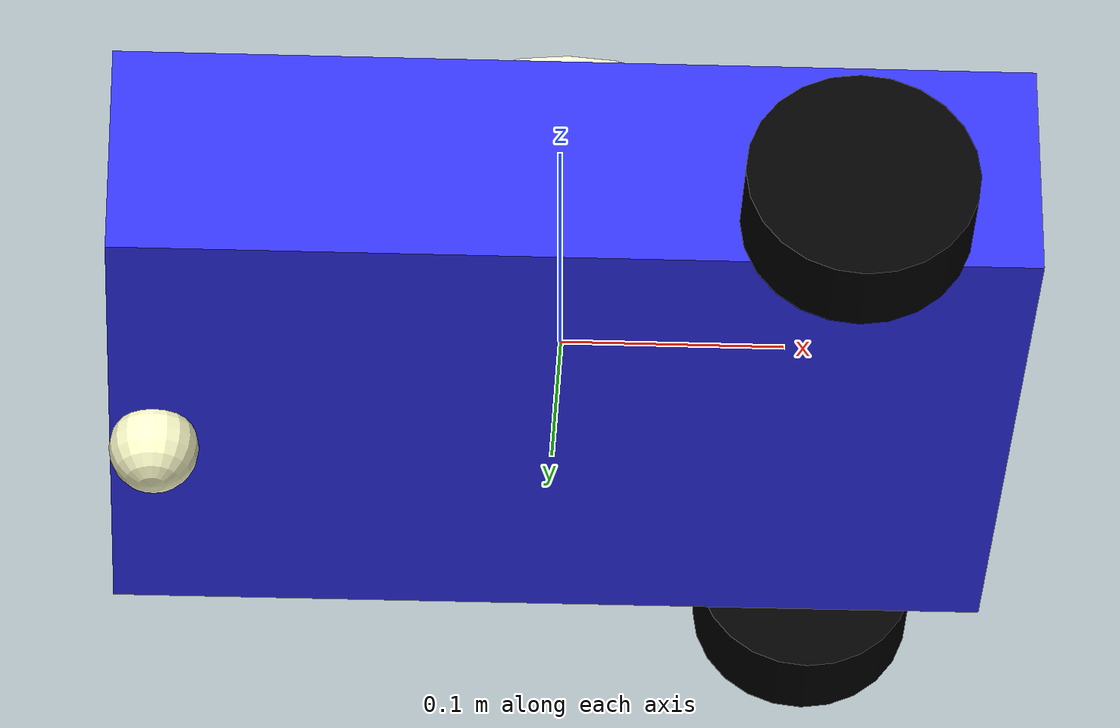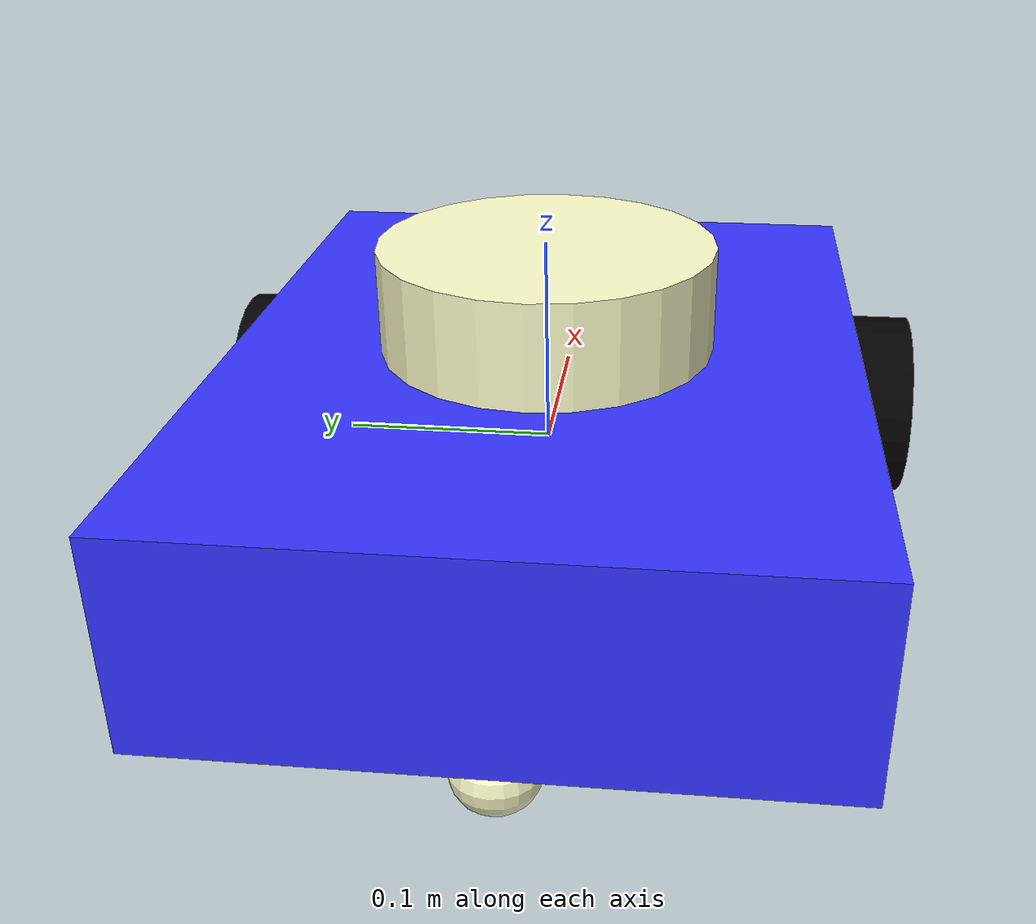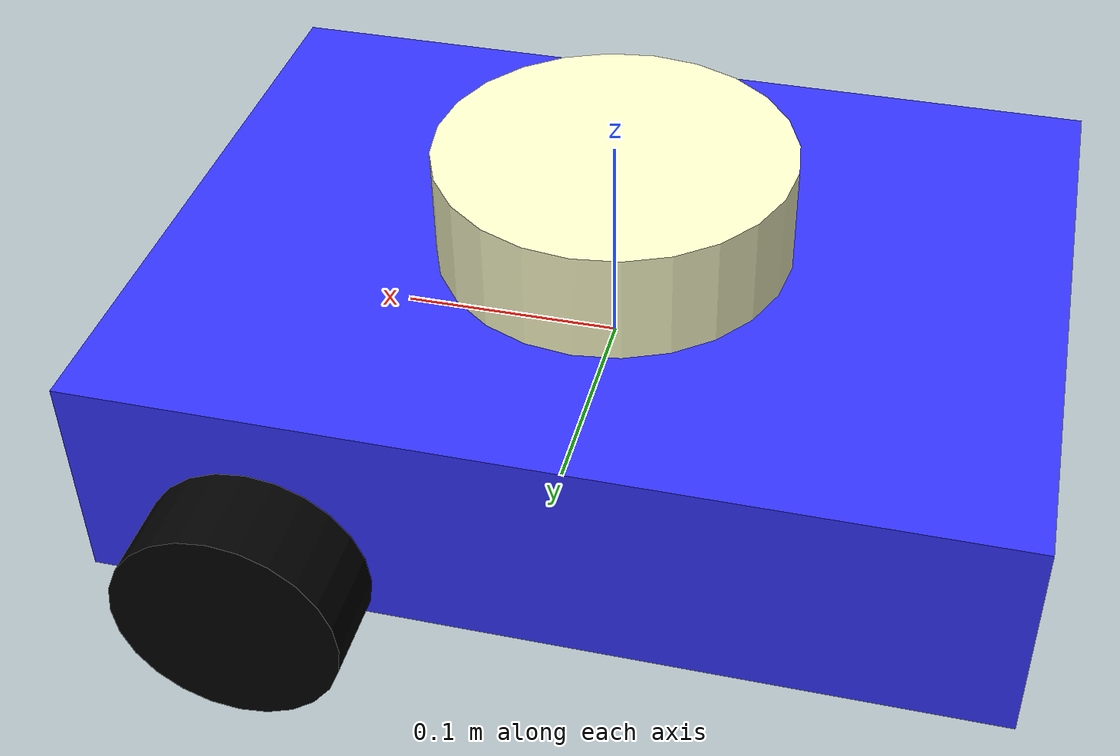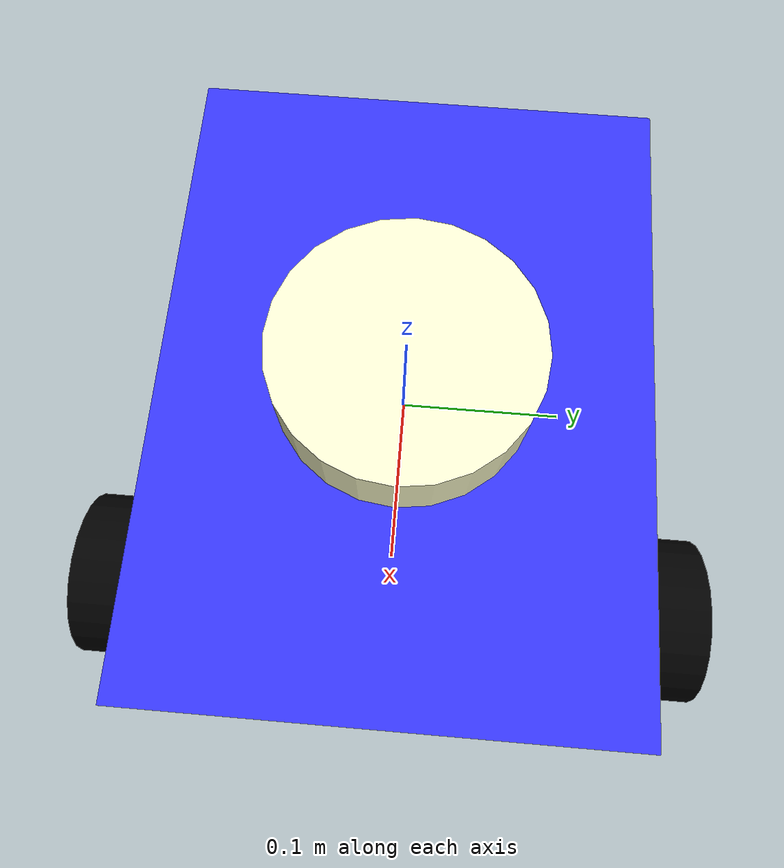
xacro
<?xml version="1.0"?>
<robot xmlns:xacro="http://www.ros.org/wiki/xacro">

    <xacro:include filename="$(find mybot)/urdf/inertial_macros.xacro"/>

    <xacro:property name="chassis_mass" value="0.5"/>
    <xacro:property name="chassis_width" value="0.3"/>
    <xacro:property name="chassis_height" value="0.1"/>
    <xacro:property name="chassis_depth" value="0.4"/>

    <xacro:property name="wheel_radius" value="0.05"/>
    <xacro:property name="wheel_length" value="0.04"/>
    <xacro:property name="wheel_mass" value="0.1"/>
    <xacro:property name="wheel_offset_x" value="0.12"/>
    <xacro:property name="wheel_offset_y" value="${(chassis_width+wheel_length)/2}"/>
    <xacro:property name="wheel_offset_z" value="-0.03"/>

    <xacro:property name="caster_radius" value="0.02"/>
    <xacro:property name="caster_mass" value="0.5"/>
    <xacro:property name="caster_offset_x" value="-0.18"/>
    <xacro:property name="caster_offset_z" value="${wheel_offset_z-wheel_radius+caster_radius}"/>

    <xacro:property name="top_mass" value="0.05"/>
    <xacro:property name="top_length" value="0.1"/>
    <xacro:property name="top_radius" value="0.08"/>

    <xacro:property name="ext_radius" value="0.02"/>
    <xacro:property name="ext_length" value="0.1"/>
    <xacro:property name="ext_mass" value="0.02"/>

    <material name="white">
        <color rgba="1.0 1.0 0.8 1"/>
    </material>

    <material name="blue">
        <color rgba="0.2 0.2 1 1"/>
    </material>

    <material name="black">
        <color rgba="0.0 0.0 0.0 1.0"/>
    </material>

    <!--base link-->
    <link name="mybot/base_link">

    </link>

    <!--chassis link-->
    <link name="mybot/chassis_link">
        <xacro:inertial_box mass="${chassis_mass}" x="${chassis_depth}" y="${chassis_width}" z="${chassis_height}">
            <origin xyz="0.0 0.0 0.0"/>
        </xacro:inertial_box>
        <visual>
            <origin xyz="0.0 0.0 0.0"/>
            <geometry>
                <box size="${chassis_depth} ${chassis_width} ${chassis_height}"/>
            </geometry>
            <material name="blue"/>
        </visual>
        <collision>
            <origin xyz="0.0 0.0 0.0"/>
            <geometry>
                <box size="${chassis_depth} ${chassis_width} ${chassis_height}"/>
            </geometry>
        </collision>
    </link>

    <joint name="mybot/chassis_joint" type="fixed">
        <origin xyz="0.0 0.0 0.0" rpy="0.0 0.0 0.0"/>
        <parent link="mybot/base_link"/>
        <child link="mybot/chassis_link"/>
    </joint>

    <gazebo reference="mybot/chassis_link">
        <material>Gazebo/Blue</material>
    </gazebo>

    <!--wheel xacro-->
    <xacro:macro name="wheel" params="name side x y">
        <link name="mybot/wheel_${name}_link">
            <xacro:inertial_cylinder mass="${wheel_mass}" length="${wheel_length}" radius="${wheel_radius}">
                <origin xyz="0.0 0.0 0.0" rpy="0.0 0.0 0.0"/>
            </xacro:inertial_cylinder>
            <visual>
                <origin xyz="0.0 0.0 0.0" rpy="0.0 0.0 0.0"/>
                <geometry>
                    <cylinder radius="${wheel_radius}" length="${wheel_length}"/>
                </geometry>
                <material name="black"/>
            </visual>
            <collision>
                <origin xyz="0.0 0.0 0.0" rpy="0.0 0.0 0.0"/>
                <geometry>
                    <cylinder radius="${wheel_radius}" length="${wheel_length}"/>
                </geometry>
            </collision>
        </link>

        <joint name="mybot/wheel_${name}_joint" type="continuous">
            <origin xyz="${x} ${y} ${wheel_offset_z}" rpy="${-side*pi/2} 0.0 0.0"/>
            <parent link="mybot/base_link"/>
            <child link="mybot/wheel_${name}_link"/>
            <axis xyz="0.0 0.0 ${side}"/>
        </joint>

        <!--wheel motor-->
        <transmission name="mybot/wheel_${name}_joint_trans">
            <type>transmission/SimpleTransmission</type>
            <joint name="mybot/wheel_${name}_joint">
                <hardwareInterface>hardware_interface/VelocityJointInterface</hardwareInterface>
            </joint>
            <actuator name="mybot/wheel_${name}_joint_motor">
                <hardwareInterface>hardware_interface/VelocityJointInterface</hardwareInterface>
                <mechanicalReduction>1</mechanicalReduction>
            </actuator>
        </transmission>

        <gazebo reference="mybot/wheel_${name}_link">
            <material>Gazebo/Black</material>
        </gazebo>

    </xacro:macro>

    <!--wheel creating using xacro:macro-->
    <xacro:wheel name="right" side="-1" x="${wheel_offset_x}" y="${wheel_offset_y}"/>
    <xacro:wheel name="left" side="1" x="${wheel_offset_x}" y="${-wheel_offset_y}"/>

    <!--caster wheel-->
    <link name="mybot/caster_link">
        <visual>
            <geometry>
                <sphere radius="${caster_radius}"/>
            </geometry>
            <material name="white"/>
        </visual>
        <collision>
            <geometry>
                <sphere radius="${caster_radius}"/>
            </geometry>
        </collision>
        <xacro:inertial_sphere mass="${caster_mass}" radius="${caster_radius}">
            <origin xyz="0 0 0" rpy="0 0 0"/>
        </xacro:inertial_sphere>
    </link>

    <joint name="mybot/caster_joint" type="fixed">
        <parent link="mybot/chassis_link"/>
        <child link="mybot/caster_link"/>
        <origin xyz="${caster_offset_x} 0 ${caster_offset_z}"/>
    </joint>

    <gazebo reference="mybot/caster_link">
        <material>Gazebo/White</material>
        <mu1>0.0001</mu1>
        <mu2>0.0001</mu2>
    </gazebo>

    <!--top link-->
    <link name="mybot/top_link">
        <xacro:inertial_cylinder mass="${top_mass}" length="${top_length}" radius="${top_radius}">
            <origin xyz="0.0 0.0 0.0"/>
        </xacro:inertial_cylinder>
        <visual>
            <geometry>
                <cylinder radius="${top_radius}" length="${top_length}"/>
            </geometry>
            <material name="white"/>
        </visual>
        <collision>
            <geometry>
                <cylinder radius="${top_radius}" length="${top_length}"/>
            </geometry>
        </collision>
    </link>

    <joint name="mybot/top_joint" type="fixed">
        <origin xyz="0.0 0.0 ${chassis_height/2}"/>
        <parent link="mybot/chassis_link"/>
        <child link="mybot/top_link"/>
    </joint>

    <gazebo reference="mybot/top_link">
        <material>Gazebo/White</material>
    </gazebo>

    <!--extension link-->
    <link name="mybot/ext_link">
        <xacro:inertial_cylinder mass="${ext_mass}" length="${ext_length}" radius="${ext_radius}">
            <origin xyz="0.0 0.0 0.0"/>
        </xacro:inertial_cylinder>
        <visual>
            <origin xyz="0.0 0.0 0.0"/>
            <geometry>
                <cylinder radius="${ext_radius}" length="${ext_length}"/>
            </geometry>
            <material name="black"/>
        </visual>
        <collision>
            <origin xyz="0.0 0.0 0.0"/>
            <geometry>
                <cylinder radius="${ext_radius}" length="${ext_length}"/>
            </geometry>
        </collision>
    </link>

    <joint name="mybot/ext_joint" type="prismatic">
        <origin xyz="${top_radius/2} 0.0 ${-top_length/4}"/>
        <parent link="mybot/top_link"/>
        <child link="mybot/ext_link"/>
        <axis xyz="0.0 0.0 1.0"/>
        <limit lower="0.0" upper="${ext_length}" effort="100.0" velocity="0.2"/>
    </joint>

    <!--extension motor-->
    <transmission name="mybot/ext_joint_trans">
        <type>transmission/SimpleTransmission</type>
        <joint name="mybot/ext_joint">
            <hardwareInterface>hardware_interface/PositionJointInterface</hardwareInterface>
        </joint>
        <actuator name="mybot/ext_joint_motor">
            <hardwareInterface>hardware_interface/PositionJointInterface</hardwareInterface>
            <mechanicalReduction>1</mechanicalReduction>
        </actuator>
    </transmission>

    <gazebo reference="mybot/ext_link">
        <material>Gazebo/Black</material>
    </gazebo>

    <!--gazebo ros control plugin-->
    <gazebo>
        <plugin name="gazebo_ros_control" filename="libgazebo_ros_control.so">
            <robotSimType>gazebo_ros_control/DefaultRobotHWSim</robotSimType>
            <legacyModeNS>true</legacyModeNS>
        </plugin>
    </gazebo>

</robot>
